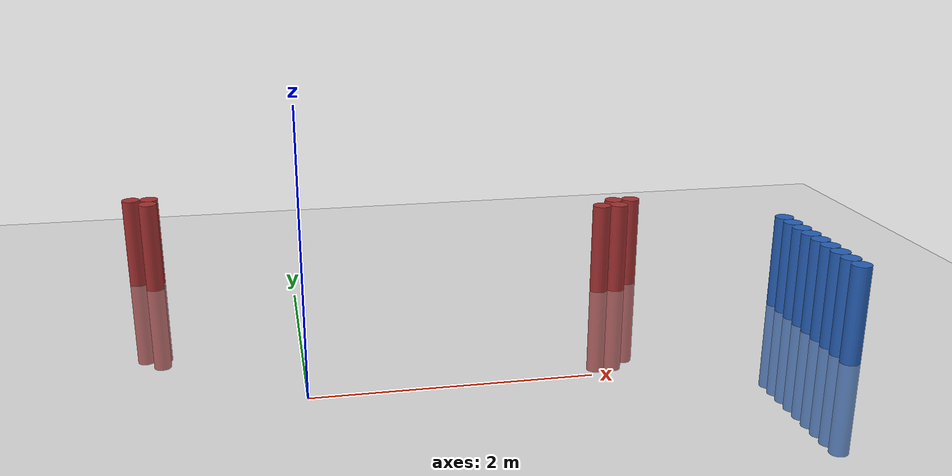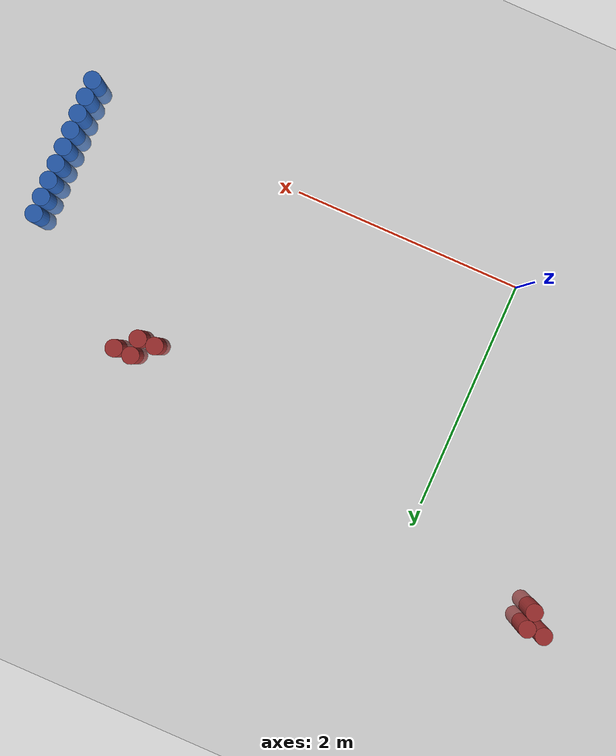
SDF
<sdf version="1.6">
 <world name="default">
  <model name="ground_plane">
   <static>1</static>
   <link name="link">
    <collision name="collision">
     <geometry><plane><normal>0 0 1</normal><size>100 100</size></plane></geometry>
     <surface><friction><ode><mu>100</mu><mu2>50</mu2></ode></friction></surface>
    </collision>
    <visual name="visual">
     <cast_shadows>0</cast_shadows>
     <geometry><plane><normal>0 0 1</normal><size>100 100</size></plane></geometry>
     <material>
      <script><uri>file://media/materials/scripts/gazebo.material</uri><name>Gazebo/Grey</name></script>
     </material>
    </visual>
   </link>
  </model>
  <model name="unit_cylinder_114">
   <static>1</static>
   <pose>3.925000 0.025000 0.000000 0.000000 0.000000 0.000000</pose>
   <link name="link">
    <inertial>
     <mass>1</mass>
     <inertia><ixx>0.145833</ixx><ixy>0</ixy><ixz>0</ixz><iyy>0.145833</iyy><iyz>0</iyz><izz>0.125</izz></inertia>
    </inertial>
    <collision name="collision">
     <geometry><cylinder><radius>0.075000</radius><length>1.5</length></cylinder></geometry>
    </collision>
    <visual name="visual">
     <geometry><cylinder><radius>0.075000</radius><length>1.5</length></cylinder></geometry>
     <material>
      <ambient>0.152000 0.379000 0.720000 1</ambient>
      <diffuse>0.152000 0.379000 0.720000 1</diffuse>
     </material>
     <material>
      <script><name>Gazebo/Grey</name><uri>file://media/materials/scripts/gazebo.material</uri></script>
     </material>
    </visual>
   </link>
  </model>
  <model name="unit_cylinder_116">
   <static>1</static>
   <pose>3.925000 0.175000 0.000000 0.000000 0.000000 0.000000</pose>
   <link name="link">
    <inertial>
     <mass>1</mass>
     <inertia><ixx>0.145833</ixx><ixy>0</ixy><ixz>0</ixz><iyy>0.145833</iyy><iyz>0</iyz><izz>0.125</izz></inertia>
    </inertial>
    <collision name="collision">
     <geometry><cylinder><radius>0.075000</radius><length>1.5</length></cylinder></geometry>
    </collision>
    <visual name="visual">
     <geometry><cylinder><radius>0.075000</radius><length>1.5</length></cylinder></geometry>
     <material>
      <ambient>0.152000 0.379000 0.720000 1</ambient>
      <diffuse>0.152000 0.379000 0.720000 1</diffuse>
     </material>
     <material>
      <script><name>Gazebo/Grey</name><uri>file://media/materials/scripts/gazebo.material</uri></script>
     </material>
    </visual>
   </link>
  </model>
  <model name="unit_cylinder_118">
   <static>1</static>
   <pose>3.925000 0.325000 0.000000 0.000000 0.000000 0.000000</pose>
   <link name="link">
    <inertial>
     <mass>1</mass>
     <inertia><ixx>0.145833</ixx><ixy>0</ixy><ixz>0</ixz><iyy>0.145833</iyy><iyz>0</iyz><izz>0.125</izz></inertia>
    </inertial>
    <collision name="collision">
     <geometry><cylinder><radius>0.075000</radius><length>1.5</length></cylinder></geometry>
    </collision>
    <visual name="visual">
     <geometry><cylinder><radius>0.075000</radius><length>1.5</length></cylinder></geometry>
     <material>
      <ambient>0.152000 0.379000 0.720000 1</ambient>
      <diffuse>0.152000 0.379000 0.720000 1</diffuse>
     </material>
     <material>
      <script><name>Gazebo/Grey</name><uri>file://media/materials/scripts/gazebo.material</uri></script>
     </material>
    </visual>
   </link>
  </model>
  <model name="unit_cylinder_120">
   <static>1</static>
   <pose>3.925000 0.475000 0.000000 0.000000 0.000000 0.000000</pose>
   <link name="link">
    <inertial>
     <mass>1</mass>
     <inertia><ixx>0.145833</ixx><ixy>0</ixy><ixz>0</ixz><iyy>0.145833</iyy><iyz>0</iyz><izz>0.125</izz></inertia>
    </inertial>
    <collision name="collision">
     <geometry><cylinder><radius>0.075000</radius><length>1.5</length></cylinder></geometry>
    </collision>
    <visual name="visual">
     <geometry><cylinder><radius>0.075000</radius><length>1.5</length></cylinder></geometry>
     <material>
      <ambient>0.152000 0.379000 0.720000 1</ambient>
      <diffuse>0.152000 0.379000 0.720000 1</diffuse>
     </material>
     <material>
      <script><name>Gazebo/Grey</name><uri>file://media/materials/scripts/gazebo.material</uri></script>
     </material>
    </visual>
   </link>
  </model>
  <model name="unit_cylinder_122">
   <static>1</static>
   <pose>3.925000 0.625000 0.000000 0.000000 0.000000 0.000000</pose>
   <link name="link">
    <inertial>
     <mass>1</mass>
     <inertia><ixx>0.145833</ixx><ixy>0</ixy><ixz>0</ixz><iyy>0.145833</iyy><iyz>0</iyz><izz>0.125</izz></inertia>
    </inertial>
    <collision name="collision">
     <geometry><cylinder><radius>0.075000</radius><length>1.5</length></cylinder></geometry>
    </collision>
    <visual name="visual">
     <geometry><cylinder><radius>0.075000</radius><length>1.5</length></cylinder></geometry>
     <material>
      <ambient>0.152000 0.379000 0.720000 1</ambient>
      <diffuse>0.152000 0.379000 0.720000 1</diffuse>
     </material>
     <material>
      <script><name>Gazebo/Grey</name><uri>file://media/materials/scripts/gazebo.material</uri></script>
     </material>
    </visual>
   </link>
  </model>
  <model name="unit_cylinder_124">
   <static>1</static>
   <pose>3.925000 0.775000 0.000000 0.000000 0.000000 0.000000</pose>
   <link name="link">
    <inertial>
     <mass>1</mass>
     <inertia><ixx>0.145833</ixx><ixy>0</ixy><ixz>0</ixz><iyy>0.145833</iyy><iyz>0</iyz><izz>0.125</izz></inertia>
    </inertial>
    <collision name="collision">
     <geometry><cylinder><radius>0.075000</radius><length>1.5</length></cylinder></geometry>
    </collision>
    <visual name="visual">
     <geometry><cylinder><radius>0.075000</radius><length>1.5</length></cylinder></geometry>
     <material>
      <ambient>0.152000 0.379000 0.720000 1</ambient>
      <diffuse>0.152000 0.379000 0.720000 1</diffuse>
     </material>
     <material>
      <script><name>Gazebo/Grey</name><uri>file://media/materials/scripts/gazebo.material</uri></script>
     </material>
    </visual>
   </link>
  </model>
  <model name="unit_cylinder_126">
   <static>1</static>
   <pose>3.925000 0.925000 0.000000 0.000000 0.000000 0.000000</pose>
   <link name="link">
    <inertial>
     <mass>1</mass>
     <inertia><ixx>0.145833</ixx><ixy>0</ixy><ixz>0</ixz><iyy>0.145833</iyy><iyz>0</iyz><izz>0.125</izz></inertia>
    </inertial>
    <collision name="collision">
     <geometry><cylinder><radius>0.075000</radius><length>1.5</length></cylinder></geometry>
    </collision>
    <visual name="visual">
     <geometry><cylinder><radius>0.075000</radius><length>1.5</length></cylinder></geometry>
     <material>
      <ambient>0.152000 0.379000 0.720000 1</ambient>
      <diffuse>0.152000 0.379000 0.720000 1</diffuse>
     </material>
     <material>
      <script><name>Gazebo/Grey</name><uri>file://media/materials/scripts/gazebo.material</uri></script>
     </material>
    </visual>
   </link>
  </model>
  <model name="unit_cylinder_128">
   <static>1</static>
   <pose>3.925000 1.075000 0.000000 0.000000 0.000000 0.000000</pose>
   <link name="link">
    <inertial>
     <mass>1</mass>
     <inertia><ixx>0.145833</ixx><ixy>0</ixy><ixz>0</ixz><iyy>0.145833</iyy><iyz>0</iyz><izz>0.125</izz></inertia>
    </inertial>
    <collision name="collision">
     <geometry><cylinder><radius>0.075000</radius><length>1.5</length></cylinder></geometry>
    </collision>
    <visual name="visual">
     <geometry><cylinder><radius>0.075000</radius><length>1.5</length></cylinder></geometry>
     <material>
      <ambient>0.152000 0.379000 0.720000 1</ambient>
      <diffuse>0.152000 0.379000 0.720000 1</diffuse>
     </material>
     <material>
      <script><name>Gazebo/Grey</name><uri>file://media/materials/scripts/gazebo.material</uri></script>
     </material>
    </visual>
   </link>
  </model>
  <model name="unit_cylinder_270">
   <static>1</static>
   <pose>-1.325000 2.575000 0.000000 0.000000 0.000000 0.000000</pose>
   <link name="link">
    <inertial>
     <mass>1</mass>
     <inertia><ixx>0.145833</ixx><ixy>0</ixy><ixz>0</ixz><iyy>0.145833</iyy><iyz>0</iyz><izz>0.125</izz></inertia>
    </inertial>
    <collision name="collision">
     <geometry><cylinder><radius>0.075000</radius><length>1.5</length></cylinder></geometry>
    </collision>
    <visual name="visual">
     <geometry><cylinder><radius>0.075000</radius><length>1.5</length></cylinder></geometry>
     <material>
      <ambient>0.648000 0.192000 0.192000 1</ambient>
      <diffuse>0.648000 0.192000 0.192000 1</diffuse>
     </material>
     <material>
      <script><name>Gazebo/Grey</name><uri>file://media/materials/scripts/gazebo.material</uri></script>
     </material>
    </visual>
   </link>
  </model>
  <model name="unit_cylinder_271">
   <static>1</static>
   <pose>-1.175000 2.425000 0.000000 0.000000 0.000000 0.000000</pose>
   <link name="link">
    <inertial>
     <mass>1</mass>
     <inertia><ixx>0.145833</ixx><ixy>0</ixy><ixz>0</ixz><iyy>0.145833</iyy><iyz>0</iyz><izz>0.125</izz></inertia>
    </inertial>
    <collision name="collision">
     <geometry><cylinder><radius>0.075000</radius><length>1.5</length></cylinder></geometry>
    </collision>
    <visual name="visual">
     <geometry><cylinder><radius>0.075000</radius><length>1.5</length></cylinder></geometry>
     <material>
      <ambient>0.648000 0.192000 0.192000 1</ambient>
      <diffuse>0.648000 0.192000 0.192000 1</diffuse>
     </material>
     <material>
      <script><name>Gazebo/Grey</name><uri>file://media/materials/scripts/gazebo.material</uri></script>
     </material>
    </visual>
   </link>
  </model>
  <model name="unit_cylinder_272">
   <static>1</static>
   <pose>-1.175000 2.575000 0.000000 0.000000 0.000000 0.000000</pose>
   <link name="link">
    <inertial>
     <mass>1</mass>
     <inertia><ixx>0.145833</ixx><ixy>0</ixy><ixz>0</ixz><iyy>0.145833</iyy><iyz>0</iyz><izz>0.125</izz></inertia>
    </inertial>
    <collision name="collision">
     <geometry><cylinder><radius>0.075000</radius><length>1.5</length></cylinder></geometry>
    </collision>
    <visual name="visual">
     <geometry><cylinder><radius>0.075000</radius><length>1.5</length></cylinder></geometry>
     <material>
      <ambient>0.648000 0.192000 0.192000 1</ambient>
      <diffuse>0.648000 0.192000 0.192000 1</diffuse>
     </material>
     <material>
      <script><name>Gazebo/Grey</name><uri>file://media/materials/scripts/gazebo.material</uri></script>
     </material>
    </visual>
   </link>
  </model>
  <model name="unit_cylinder_273">
   <static>1</static>
   <pose>2.575000 1.675000 0.000000 0.000000 0.000000 0.000000</pose>
   <link name="link">
    <inertial>
     <mass>1</mass>
     <inertia><ixx>0.145833</ixx><ixy>0</ixy><ixz>0</ixz><iyy>0.145833</iyy><iyz>0</iyz><izz>0.125</izz></inertia>
    </inertial>
    <collision name="collision">
     <geometry><cylinder><radius>0.075000</radius><length>1.5</length></cylinder></geometry>
    </collision>
    <visual name="visual">
     <geometry><cylinder><radius>0.075000</radius><length>1.5</length></cylinder></geometry>
     <material>
      <ambient>0.648000 0.192000 0.192000 1</ambient>
      <diffuse>0.648000 0.192000 0.192000 1</diffuse>
     </material>
     <material>
      <script><name>Gazebo/Grey</name><uri>file://media/materials/scripts/gazebo.material</uri></script>
     </material>
    </visual>
   </link>
  </model>
  <model name="unit_cylinder_274">
   <static>1</static>
   <pose>2.725000 1.675000 0.000000 0.000000 0.000000 0.000000</pose>
   <link name="link">
    <inertial>
     <mass>1</mass>
     <inertia><ixx>0.145833</ixx><ixy>0</ixy><ixz>0</ixz><iyy>0.145833</iyy><iyz>0</iyz><izz>0.125</izz></inertia>
    </inertial>
    <collision name="collision">
     <geometry><cylinder><radius>0.075000</radius><length>1.5</length></cylinder></geometry>
    </collision>
    <visual name="visual">
     <geometry><cylinder><radius>0.075000</radius><length>1.5</length></cylinder></geometry>
     <material>
      <ambient>0.648000 0.192000 0.192000 1</ambient>
      <diffuse>0.648000 0.192000 0.192000 1</diffuse>
     </material>
     <material>
      <script><name>Gazebo/Grey</name><uri>file://media/materials/scripts/gazebo.material</uri></script>
     </material>
    </visual>
   </link>
  </model>
  <model name="unit_cylinder_275">
   <static>1</static>
   <pose>2.725000 1.825000 0.000000 0.000000 0.000000 0.000000</pose>
   <link name="link">
    <inertial>
     <mass>1</mass>
     <inertia><ixx>0.145833</ixx><ixy>0</ixy><ixz>0</ixz><iyy>0.145833</iyy><iyz>0</iyz><izz>0.125</izz></inertia>
    </inertial>
    <collision name="collision">
     <geometry><cylinder><radius>0.075000</radius><length>1.5</length></cylinder></geometry>
    </collision>
    <visual name="visual">
     <geometry><cylinder><radius>0.075000</radius><length>1.5</length></cylinder></geometry>
     <material>
      <ambient>0.648000 0.192000 0.192000 1</ambient>
      <diffuse>0.648000 0.192000 0.192000 1</diffuse>
     </material>
     <material>
      <script><name>Gazebo/Grey</name><uri>file://media/materials/scripts/gazebo.material</uri></script>
     </material>
    </visual>
   </link>
  </model>
  <model name="unit_cylinder_276">
   <static>1</static>
   <pose>2.875000 1.825000 0.000000 0.000000 0.000000 0.000000</pose>
   <link name="link">
    <inertial>
     <mass>1</mass>
     <inertia><ixx>0.145833</ixx><ixy>0</ixy><ixz>0</ixz><iyy>0.145833</iyy><iyz>0</iyz><izz>0.125</izz></inertia>
    </inertial>
    <collision name="collision">
     <geometry><cylinder><radius>0.075000</radius><length>1.5</length></cylinder></geometry>
    </collision>
    <visual name="visual">
     <geometry><cylinder><radius>0.075000</radius><length>1.5</length></cylinder></geometry>
     <material>
      <ambient>0.648000 0.192000 0.192000 1</ambient>
      <diffuse>0.648000 0.192000 0.192000 1</diffuse>
     </material>
     <material>
      <script><name>Gazebo/Grey</name><uri>file://media/materials/scripts/gazebo.material</uri></script>
     </material>
    </visual>
   </link>
  </model>
  <model name="unit_cylinder_294">
   <static>1</static>
   <pose>3.925000 -0.125000 0.000000 0.000000 0.000000 0.000000</pose>
   <link name="link">
    <inertial>
     <mass>1</mass>
     <inertia><ixx>0.145833</ixx><ixy>0</ixy><ixz>0</ixz><iyy>0.145833</iyy><iyz>0</iyz><izz>0.125</izz></inertia>
    </inertial>
    <collision name="collision">
     <geometry><cylinder><radius>0.075000</radius><length>1.5</length></cylinder></geometry>
    </collision>
    <visual name="visual">
     <geometry><cylinder><radius>0.075000</radius><length>1.5</length></cylinder></geometry>
     <material>
      <ambient>0.152000 0.379000 0.720000 1</ambient>
      <diffuse>0.152000 0.379000 0.720000 1</diffuse>
     </material>
     <material>
      <script><name>Gazebo/Grey</name><uri>file://media/materials/scripts/gazebo.material</uri></script>
     </material>
    </visual>
   </link>
  </model>
  <model name="unit_cylinder_295">
   <static>1</static>
   <pose>3.925000 0.025000 0.000000 0.000000 0.000000 0.000000</pose>
   <link name="link">
    <inertial>
     <mass>1</mass>
     <inertia><ixx>0.145833</ixx><ixy>0</ixy><ixz>0</ixz><iyy>0.145833</iyy><iyz>0</iyz><izz>0.125</izz></inertia>
    </inertial>
    <collision name="collision">
     <geometry><cylinder><radius>0.075000</radius><length>1.5</length></cylinder></geometry>
    </collision>
    <visual name="visual">
     <geometry><cylinder><radius>0.075000</radius><length>1.5</length></cylinder></geometry>
     <material>
      <ambient>0.152000 0.379000 0.720000 1</ambient>
      <diffuse>0.152000 0.379000 0.720000 1</diffuse>
     </material>
     <material>
      <script><name>Gazebo/Grey</name><uri>file://media/materials/scripts/gazebo.material</uri></script>
     </material>
    </visual>
   </link>
  </model>
  <model name="unit_cylinder_296">
   <static>1</static>
   <pose>3.925000 0.175000 0.000000 0.000000 0.000000 0.000000</pose>
   <link name="link">
    <inertial>
     <mass>1</mass>
     <inertia><ixx>0.145833</ixx><ixy>0</ixy><ixz>0</ixz><iyy>0.145833</iyy><iyz>0</iyz><izz>0.125</izz></inertia>
    </inertial>
    <collision name="collision">
     <geometry><cylinder><radius>0.075000</radius><length>1.5</length></cylinder></geometry>
    </collision>
    <visual name="visual">
     <geometry><cylinder><radius>0.075000</radius><length>1.5</length></cylinder></geometry>
     <material>
      <ambient>0.152000 0.379000 0.720000 1</ambient>
      <diffuse>0.152000 0.379000 0.720000 1</diffuse>
     </material>
     <material>
      <script><name>Gazebo/Grey</name><uri>file://media/materials/scripts/gazebo.material</uri></script>
     </material>
    </visual>
   </link>
  </model>
  <model name="unit_cylinder_297">
   <static>1</static>
   <pose>3.925000 0.325000 0.000000 0.000000 0.000000 0.000000</pose>
   <link name="link">
    <inertial>
     <mass>1</mass>
     <inertia><ixx>0.145833</ixx><ixy>0</ixy><ixz>0</ixz><iyy>0.145833</iyy><iyz>0</iyz><izz>0.125</izz></inertia>
    </inertial>
    <collision name="collision">
     <geometry><cylinder><radius>0.075000</radius><length>1.5</length></cylinder></geometry>
    </collision>
    <visual name="visual">
     <geometry><cylinder><radius>0.075000</radius><length>1.5</length></cylinder></geometry>
     <material>
      <ambient>0.152000 0.379000 0.720000 1</ambient>
      <diffuse>0.152000 0.379000 0.720000 1</diffuse>
     </material>
     <material>
      <script><name>Gazebo/Grey</name><uri>file://media/materials/scripts/gazebo.material</uri></script>
     </material>
    </visual>
   </link>
  </model>
  <model name="unit_cylinder_298">
   <static>1</static>
   <pose>3.925000 0.475000 0.000000 0.000000 0.000000 0.000000</pose>
   <link name="link">
    <inertial>
     <mass>1</mass>
     <inertia><ixx>0.145833</ixx><ixy>0</ixy><ixz>0</ixz><iyy>0.145833</iyy><iyz>0</iyz><izz>0.125</izz></inertia>
    </inertial>
    <collision name="collision">
     <geometry><cylinder><radius>0.075000</radius><length>1.5</length></cylinder></geometry>
    </collision>
    <visual name="visual">
     <geometry><cylinder><radius>0.075000</radius><length>1.5</length></cylinder></geometry>
     <material>
      <ambient>0.152000 0.379000 0.720000 1</ambient>
      <diffuse>0.152000 0.379000 0.720000 1</diffuse>
     </material>
     <material>
      <script><name>Gazebo/Grey</name><uri>file://media/materials/scripts/gazebo.material</uri></script>
     </material>
    </visual>
   </link>
  </model>
  <model name="unit_cylinder_299">
   <static>1</static>
   <pose>3.925000 0.625000 0.000000 0.000000 0.000000 0.000000</pose>
   <link name="link">
    <inertial>
     <mass>1</mass>
     <inertia><ixx>0.145833</ixx><ixy>0</ixy><ixz>0</ixz><iyy>0.145833</iyy><iyz>0</iyz><izz>0.125</izz></inertia>
    </inertial>
    <collision name="collision">
     <geometry><cylinder><radius>0.075000</radius><length>1.5</length></cylinder></geometry>
    </collision>
    <visual name="visual">
     <geometry><cylinder><radius>0.075000</radius><length>1.5</length></cylinder></geometry>
     <material>
      <ambient>0.152000 0.379000 0.720000 1</ambient>
      <diffuse>0.152000 0.379000 0.720000 1</diffuse>
     </material>
     <material>
      <script><name>Gazebo/Grey</name><uri>file://media/materials/scripts/gazebo.material</uri></script>
     </material>
    </visual>
   </link>
  </model>
  <model name="unit_cylinder_300">
   <static>1</static>
   <pose>3.925000 0.775000 0.000000 0.000000 0.000000 0.000000</pose>
   <link name="link">
    <inertial>
     <mass>1</mass>
     <inertia><ixx>0.145833</ixx><ixy>0</ixy><ixz>0</ixz><iyy>0.145833</iyy><iyz>0</iyz><izz>0.125</izz></inertia>
    </inertial>
    <collision name="collision">
     <geometry><cylinder><radius>0.075000</radius><length>1.5</length></cylinder></geometry>
    </collision>
    <visual name="visual">
     <geometry><cylinder><radius>0.075000</radius><length>1.5</length></cylinder></geometry>
     <material>
      <ambient>0.152000 0.379000 0.720000 1</ambient>
      <diffuse>0.152000 0.379000 0.720000 1</diffuse>
     </material>
     <material>
      <script><name>Gazebo/Grey</name><uri>file://media/materials/scripts/gazebo.material</uri></script>
     </material>
    </visual>
   </link>
  </model>
  <model name="unit_cylinder_301">
   <static>1</static>
   <pose>3.925000 0.925000 0.000000 0.000000 0.000000 0.000000</pose>
   <link name="link">
    <inertial>
     <mass>1</mass>
     <inertia><ixx>0.145833</ixx><ixy>0</ixy><ixz>0</ixz><iyy>0.145833</iyy><iyz>0</iyz><izz>0.125</izz></inertia>
    </inertial>
    <collision name="collision">
     <geometry><cylinder><radius>0.075000</radius><length>1.5</length></cylinder></geometry>
    </collision>
    <visual name="visual">
     <geometry><cylinder><radius>0.075000</radius><length>1.5</length></cylinder></geometry>
     <material>
      <ambient>0.152000 0.379000 0.720000 1</ambient>
      <diffuse>0.152000 0.379000 0.720000 1</diffuse>
     </material>
     <material>
      <script><name>Gazebo/Grey</name><uri>file://media/materials/scripts/gazebo.material</uri></script>
     </material>
    </visual>
   </link>
  </model>
 </world>
</sdf>
